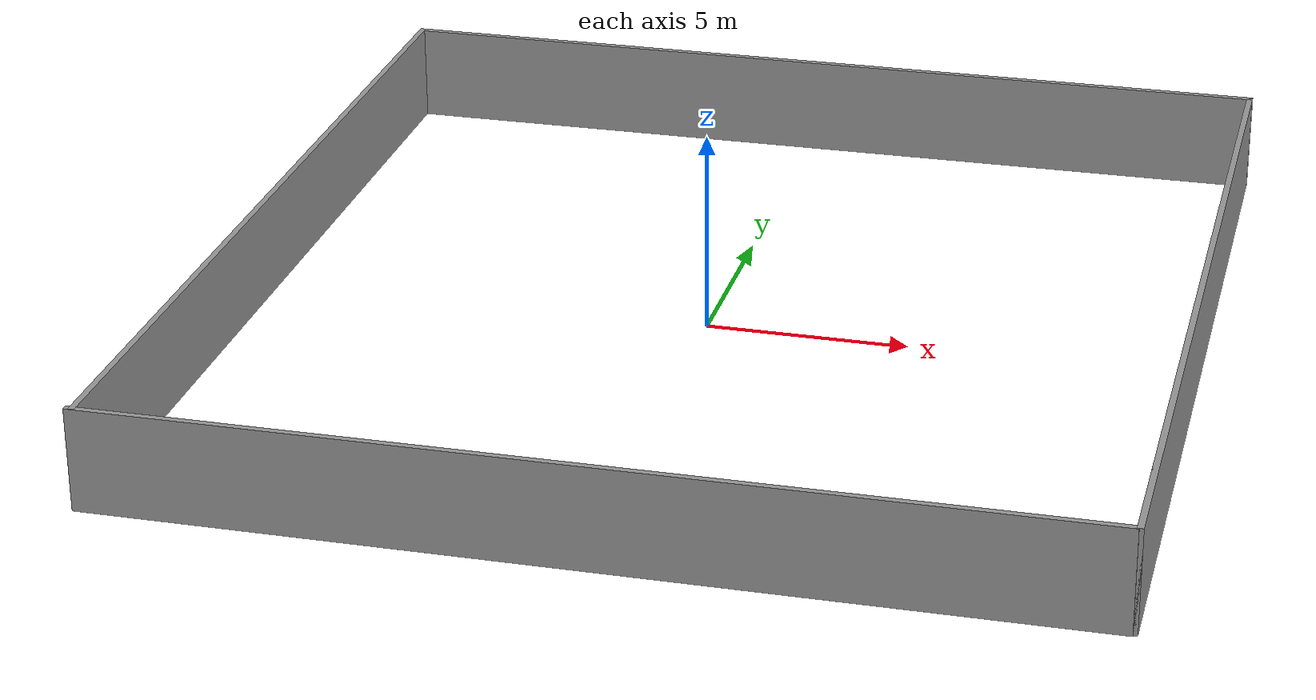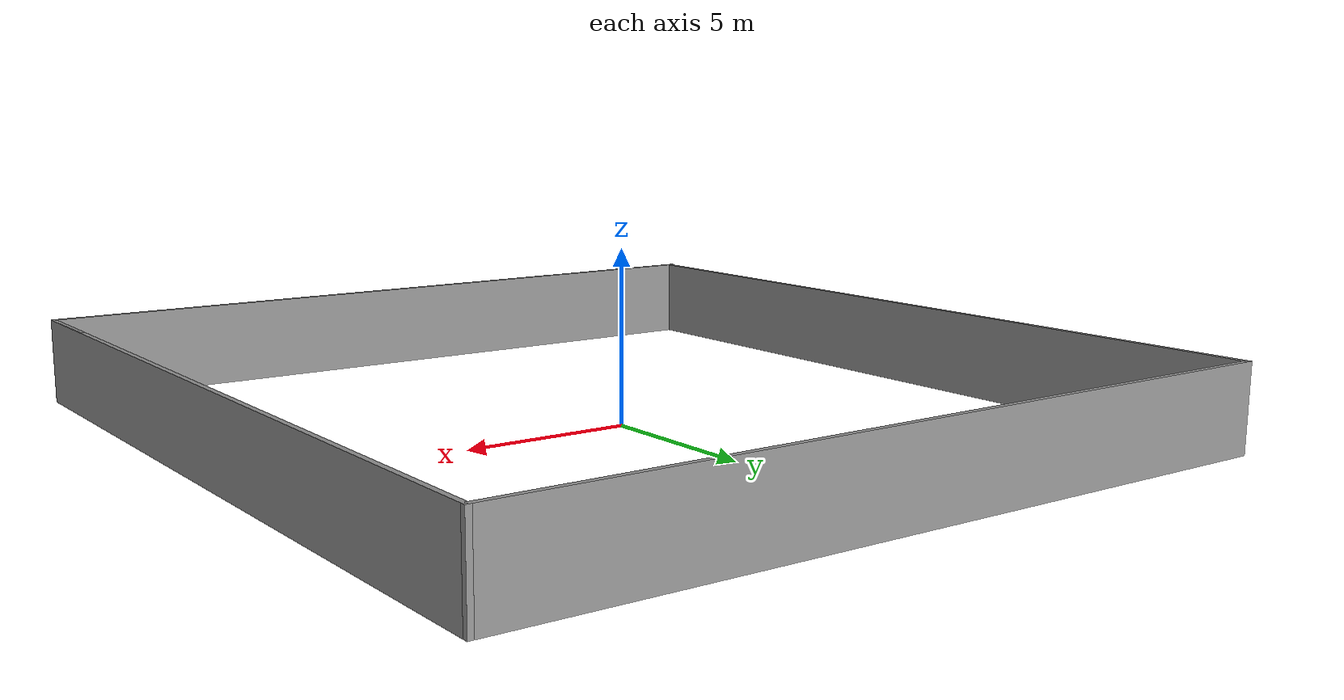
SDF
<?xml version='1.0'?>
<sdf version='1.6'>
  <model name='spare_room'>
    <pose frame=''>0.370001 -0.159999 0 0 -0 0</pose>
    <link name='Wall_0'>
      <collision name='Wall_0_Collision'>
        <geometry>
          <box>
            <size>23.25 0.15 2.5</size>
          </box>
        </geometry>
        <pose frame=''>0 0 1.25 0 -0 0</pose>
      </collision>
      <visual name='Wall_0_Visual'>
        <pose frame=''>0 0 1.25 0 -0 0</pose>
        <geometry>
          <box>
            <size>23.25 0.15 2.5</size>
          </box>
        </geometry>
        <material>
          <script>
            <uri>file://media/materials/scripts/gazebo.material</uri>
            <name>Gazebo/Grey</name>
          </script>
          <ambient>1 1 1 1</ambient>
        </material>
      </visual>
      <pose frame=''>-0.050001 -12.19 0 0 -0 0</pose>
    </link>
    <link name='Wall_2'>
      <collision name='Wall_2_Collision'>
        <geometry>
          <box>
            <size>2.75 0.15 2.5</size>
          </box>
        </geometry>
        <pose frame=''>0 0 1.25 0 -0 0</pose>
      </collision>
      <visual name='Wall_2_Visual'>
        <pose frame=''>0 0 1.25 0 -0 0</pose>
        <geometry>
          <box>
            <size>2.75 0.15 2.5</size>
          </box>
        </geometry>
        <material>
          <script>
            <uri>file://media/materials/scripts/gazebo.material</uri>
            <name>Gazebo/Grey</name>
          </script>
          <ambient>1 1 1 1</ambient>
        </material>
      </visual>
      <pose frame=''>11.6 -10.86 0 0 0 -1.5708</pose>
    </link>
    <link name='Wall_3'>
      <collision name='Wall_3_Collision'>
        <geometry>
          <box>
            <size>24.5 0.15 2.5</size>
          </box>
        </geometry>
        <pose frame=''>0 0 1.25 0 -0 0</pose>
      </collision>
      <visual name='Wall_3_Visual'>
        <pose frame=''>0 0 1.25 0 -0 0</pose>
        <geometry>
          <box>
            <size>24.5 0.15 2.5</size>
          </box>
        </geometry>
        <material>
          <script>
            <uri>file://media/materials/scripts/gazebo.material</uri>
            <name>Gazebo/Grey</name>
          </script>
          <ambient>1 1 1 1</ambient>
        </material>
      </visual>
      <pose frame=''>11.6 0.014999 0 0 -0 1.5708</pose>
    </link>
    <link name='Wall_4'>
      <collision name='Wall_4_Collision'>
        <geometry>
          <box>
            <size>23.25 0.15 2.5</size>
          </box>
        </geometry>
        <pose frame=''>0 0 1.25 0 -0 0</pose>
      </collision>
      <visual name='Wall_4_Visual'>
        <pose frame=''>0 0 1.25 0 -0 0</pose>
        <geometry>
          <box>
            <size>23.25 0.15 2.5</size>
          </box>
        </geometry>
        <material>
          <script>
            <uri>file://media/materials/scripts/gazebo.material</uri>
            <name>Gazebo/Grey</name>
          </script>
          <ambient>1 1 1 1</ambient>
        </material>
      </visual>
      <pose frame=''>0.049999 12.19 0 0 -0 3.14159</pose>
    </link>
    <link name='Wall_5'>
      <collision name='Wall_5_Collision'>
        <geometry>
          <box>
            <size>24.5 0.15 2.5</size>
          </box>
        </geometry>
        <pose frame=''>0 0 1.25 0 -0 0</pose>
      </collision>
      <visual name='Wall_5_Visual'>
        <pose frame=''>0 0 1.25 0 -0 0</pose>
        <geometry>
          <box>
            <size>24.5 0.15 2.5</size>
          </box>
        </geometry>
        <material>
          <script>
            <uri>file://media/materials/scripts/gazebo.material</uri>
            <name>Gazebo/Grey</name>
          </script>
          <ambient>1 1 1 1</ambient>
        </material>
      </visual>
      <pose frame=''>-11.5 0.014999 0 0 0 -1.5708</pose>
    </link>
    <static>1</static>
  </model>
</sdf>
